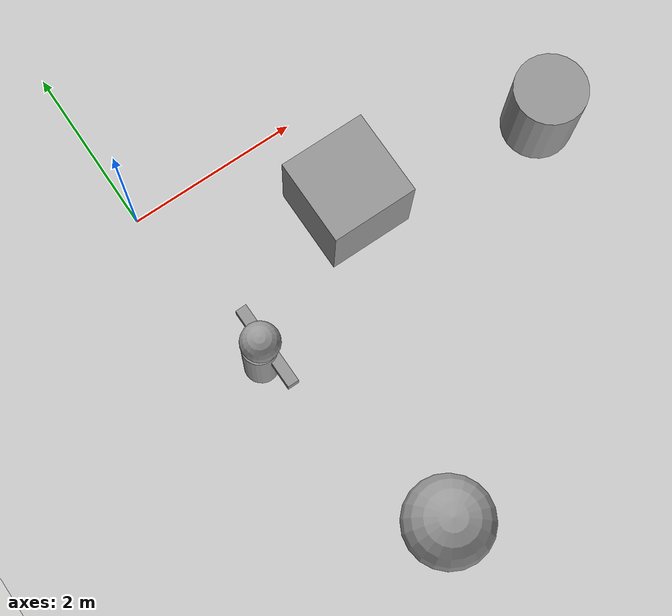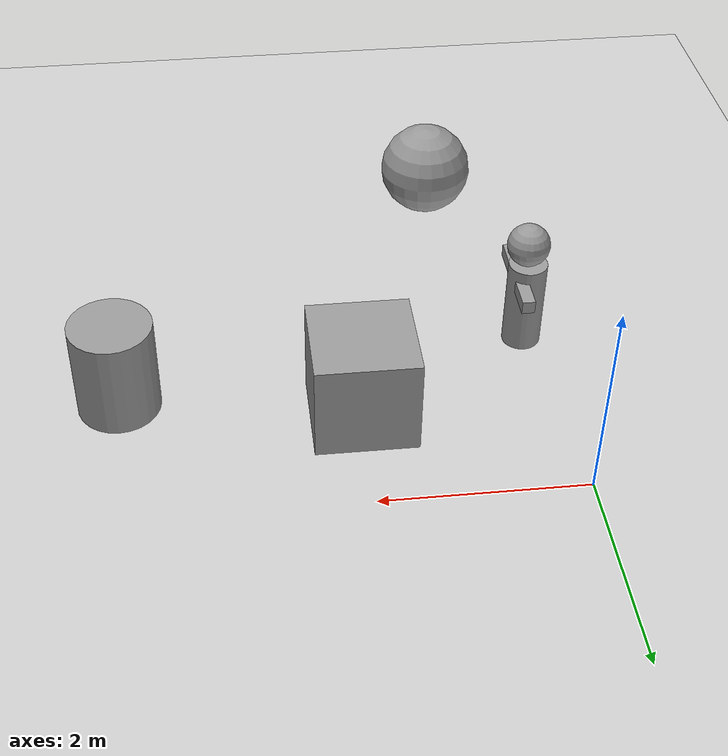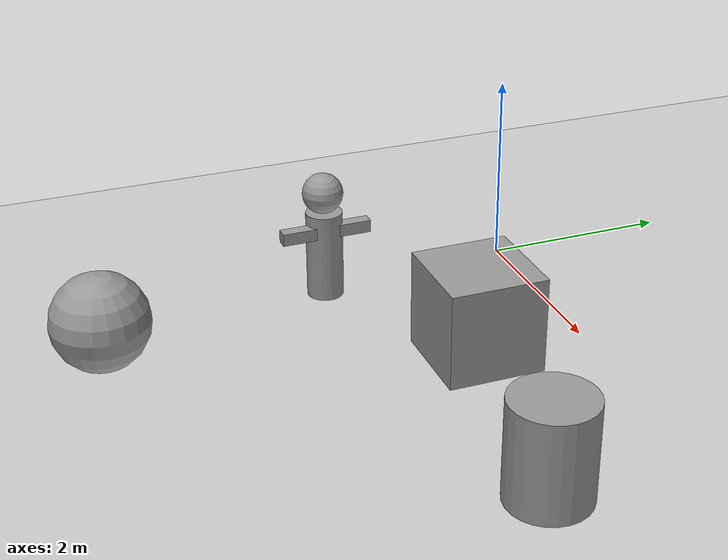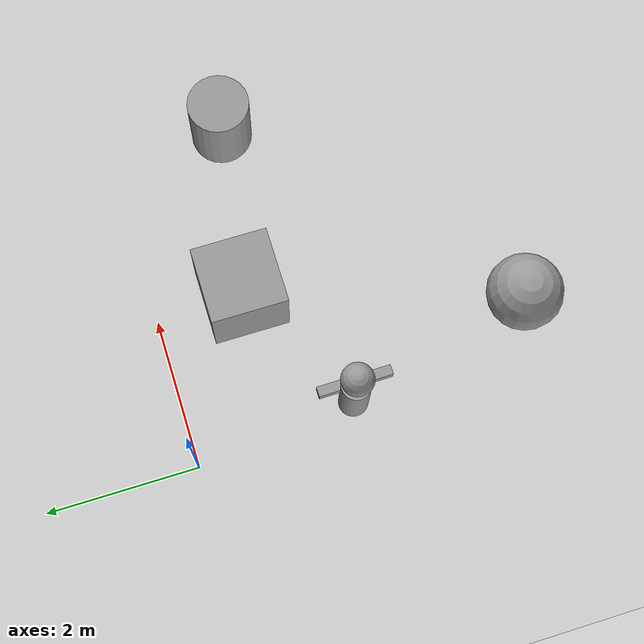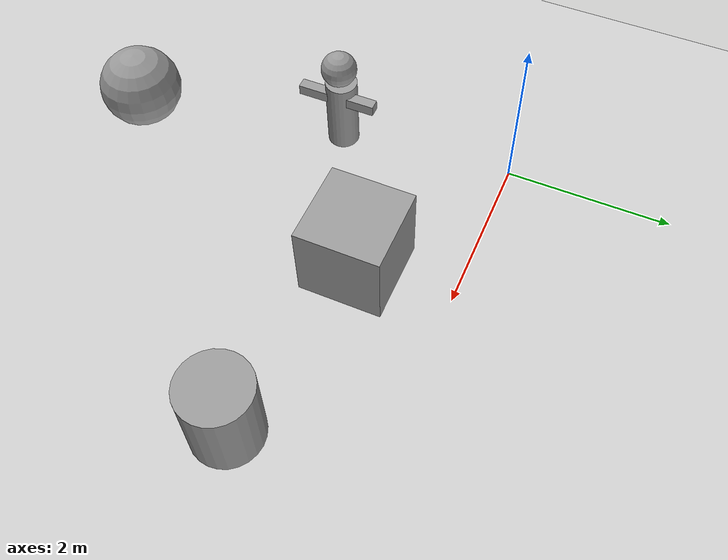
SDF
<sdf version="1.7">
 <world name="default">
  <model name="ground_plane">
   <static>1</static>
   <link name="link">
    <collision name="collision">
     <geometry><plane><normal>0 0 1</normal><size>100 100</size></plane></geometry>
     <surface><friction><ode><mu>100</mu><mu2>50</mu2></ode></friction></surface>
    </collision>
    <visual name="visual">
     <cast_shadows>0</cast_shadows>
     <geometry><plane><normal>0 0 1</normal><size>100 100</size></plane></geometry>
     <material>
      <script><uri>file://media/materials/scripts/gazebo.material</uri><name>Gazebo/Grey</name></script>
     </material>
    </visual>
   </link>
  </model>
  <model name="human_0">
   <link name="link_0">
    <inertial>
     <mass>0.142839</mass>
     <inertia>
      <ixx>0.0121475</ixx>
      <ixy>0</ixy>
      <ixz>0</ixz>
      <iyy>0.0121475</iyy>
      <iyz>0</iyz>
      <izz>0.00267643</izz>
     </inertia>
    </inertial>
    <pose>0.008516 0.031929 -0.329122 0 -0 0</pose>
    <visual name="visual">
     <geometry><cylinder><radius>0.193584</radius><length>0.95294</length></cylinder></geometry>
     <material>
      <lighting>1</lighting>
      <script><uri>file://media/materials/scripts/gazebo.material</uri><name>Gazebo/Grey</name></script>
      <shader type="pixel"/>
     </material>
    </visual>
    <collision name="collision">
     <geometry><cylinder><radius>0.193584</radius><length>0.95294</length></cylinder></geometry>
     <surface>
      <friction>
       <ode><mu>1</mu><mu2>1</mu2><fdir1>0 0 0</fdir1><slip1>0</slip1><slip2>0</slip2></ode>
       <torsional>
        <coefficient>1</coefficient>
        <patch_radius>0</patch_radius>
        <surface_radius>0</surface_radius>
        <use_patch_radius>1</use_patch_radius>
        <ode><slip>0</slip></ode>
       </torsional>
      </friction>
      <bounce><restitution_coefficient>0</restitution_coefficient><threshold>1e+06</threshold></bounce>
      <contact>
       <collide_without_contact>0</collide_without_contact>
       <collide_without_contact_bitmask>1</collide_without_contact_bitmask>
       <collide_bitmask>1</collide_bitmask>
       <ode>
        <soft_cfm>0</soft_cfm>
        <soft_erp>0.2</soft_erp>
        <kp>1e+13</kp>
        <kd>1</kd>
        <max_vel>0.01</max_vel>
        <min_depth>0</min_depth>
       </ode>
       <bullet>
        <split_impulse>1</split_impulse>
        <split_impulse_penetration_threshold>-0.01</split_impulse_penetration_threshold>
        <soft_cfm>0</soft_cfm>
        <soft_erp>0.2</soft_erp>
        <kp>1e+13</kp>
        <kd>1</kd>
       </bullet>
      </contact>
     </surface>
    </collision>
   </link>
   <link name="link_1">
    <inertial>
     <mass>0.0778712</mass>
     <inertia>
      <ixx>0.00142002</ixx>
      <ixy>0</ixy>
      <ixz>0</ixz>
      <iyy>0.00142002</iyy>
      <iyz>0</iyz>
      <izz>0.00142002</izz>
     </inertia>
    </inertial>
    <pose>-0.003621 0.018816 0.365537 0 -0 0</pose>
    <visual name="visual">
     <geometry><sphere><radius>0.213515</radius></sphere></geometry>
     <material>
      <lighting>1</lighting>
      <script><uri>file://media/materials/scripts/gazebo.material</uri><name>Gazebo/Grey</name></script>
      <shader type="pixel"/>
     </material>
    </visual>
    <collision name="collision">
     <geometry><sphere><radius>0.213515</radius></sphere></geometry>
     <surface>
      <friction>
       <ode><mu>1</mu><mu2>1</mu2><fdir1>0 0 0</fdir1><slip1>0</slip1><slip2>0</slip2></ode>
       <torsional>
        <coefficient>1</coefficient>
        <patch_radius>0</patch_radius>
        <surface_radius>0</surface_radius>
        <use_patch_radius>1</use_patch_radius>
        <ode><slip>0</slip></ode>
       </torsional>
      </friction>
      <bounce><restitution_coefficient>0</restitution_coefficient><threshold>1e+06</threshold></bounce>
      <contact>
       <collide_without_contact>0</collide_without_contact>
       <collide_without_contact_bitmask>1</collide_without_contact_bitmask>
       <collide_bitmask>1</collide_bitmask>
       <ode>
        <soft_cfm>0</soft_cfm>
        <soft_erp>0.2</soft_erp>
        <kp>1e+13</kp>
        <kd>1</kd>
        <max_vel>0.01</max_vel>
        <min_depth>0</min_depth>
       </ode>
       <bullet>
        <split_impulse>1</split_impulse>
        <split_impulse_penetration_threshold>-0.01</split_impulse_penetration_threshold>
        <soft_cfm>0</soft_cfm>
        <soft_erp>0.2</soft_erp>
        <kp>1e+13</kp>
        <kd>1</kd>
       </bullet>
      </contact>
     </surface>
    </collision>
   </link>
   <link name="link_2">
    <inertial>
     <mass>0.0161853</mass>
     <inertia>
      <ixx>4.54901e-05</ixx>
      <ixy>0</ixy>
      <ixz>0</ixz>
      <iyy>0.00126685</iyy>
      <iyz>0</iyz>
      <izz>0.00126565</izz>
     </inertia>
    </inertial>
    <pose>-0.004892 -0.050751 -0.036416 0 -0 0</pose>
    <visual name="visual">
     <geometry><box><size>0.960182 0.128141 0.131555</size></box></geometry>
     <material>
      <lighting>1</lighting>
      <script><uri>file://media/materials/scripts/gazebo.material</uri><name>Gazebo/Grey</name></script>
      <shader type="pixel"/>
     </material>
    </visual>
    <collision name="collision">
     <geometry><box><size>0.960182 0.128141 0.131555</size></box></geometry>
     <surface>
      <friction>
       <ode><mu>1</mu><mu2>1</mu2><fdir1>0 0 0</fdir1><slip1>0</slip1><slip2>0</slip2></ode>
       <torsional>
        <coefficient>1</coefficient>
        <patch_radius>0</patch_radius>
        <surface_radius>0</surface_radius>
        <use_patch_radius>1</use_patch_radius>
        <ode><slip>0</slip></ode>
       </torsional>
      </friction>
      <bounce><restitution_coefficient>0</restitution_coefficient><threshold>1e+06</threshold></bounce>
      <contact>
       <collide_without_contact>0</collide_without_contact>
       <collide_without_contact_bitmask>1</collide_without_contact_bitmask>
       <collide_bitmask>1</collide_bitmask>
       <ode>
        <soft_cfm>0</soft_cfm>
        <soft_erp>0.2</soft_erp>
        <kp>1e+13</kp>
        <kd>1</kd>
        <max_vel>0.01</max_vel>
        <min_depth>0</min_depth>
       </ode>
       <bullet>
        <split_impulse>1</split_impulse>
        <split_impulse_penetration_threshold>-0.01</split_impulse_penetration_threshold>
        <soft_cfm>0</soft_cfm>
        <soft_erp>0.2</soft_erp>
        <kp>1e+13</kp>
        <kd>1</kd>
       </bullet>
      </contact>
     </surface>
    </collision>
   </link>
   <static>1</static>
   <pose>0.276057 -2.13822 0.816032 0 -0 1.57826</pose>
  </model>
  <model name="unit_sphere">
   <pose>0.876314 -4.62952 0.5 0 -0 0</pose>
   <link name="link">
    <inertial>
     <mass>1</mass>
     <inertia><ixx>0.1</ixx><ixy>0</ixy><ixz>0</ixz><iyy>0.1</iyy><iyz>0</iyz><izz>0.1</izz></inertia>
    </inertial>
    <collision name="collision"><geometry><sphere><radius>0.5</radius></sphere></geometry></collision>
    <visual name="visual">
     <geometry><sphere><radius>0.5</radius></sphere></geometry>
     <material>
      <script><name>Gazebo/Grey</name><uri>file://media/materials/scripts/gazebo.material</uri></script>
     </material>
    </visual>
   </link>
  </model>
  <model name="unit_box_0">
   <pose>2.00792 -1.15376 0.499995 0 -1e-05 0</pose>
   <link name="link">
    <inertial>
     <mass>1</mass>
     <inertia>
      <ixx>0.166667</ixx>
      <ixy>0</ixy>
      <ixz>0</ixz>
      <iyy>0.166667</iyy>
      <iyz>0</iyz>
      <izz>0.166667</izz>
     </inertia>
    </inertial>
    <collision name="collision"><geometry><box><size>1 1 1</size></box></geometry></collision>
    <visual name="visual">
     <geometry><box><size>1 1 1</size></box></geometry>
     <material>
      <script><name>Gazebo/Grey</name><uri>file://media/materials/scripts/gazebo.material</uri></script>
     </material>
    </visual>
   </link>
  </model>
  <model name="unit_cylinder_0">
   <pose>4.34257 -1.54494 0.499993 -1e-06 -1e-06 -5.5e-05</pose>
   <link name="link">
    <inertial>
     <mass>1</mass>
     <inertia><ixx>0.145833</ixx><ixy>0</ixy><ixz>0</ixz><iyy>0.145833</iyy><iyz>0</iyz><izz>0.125</izz></inertia>
    </inertial>
    <collision name="collision">
     <geometry><cylinder><radius>0.407664</radius><length>1</length></cylinder></geometry>
    </collision>
    <visual name="visual">
     <geometry><cylinder><radius>0.407664</radius><length>1</length></cylinder></geometry>
     <material>
      <script><name>Gazebo/Grey</name><uri>file://media/materials/scripts/gazebo.material</uri></script>
     </material>
    </visual>
   </link>
  </model>
 </world>
</sdf>
